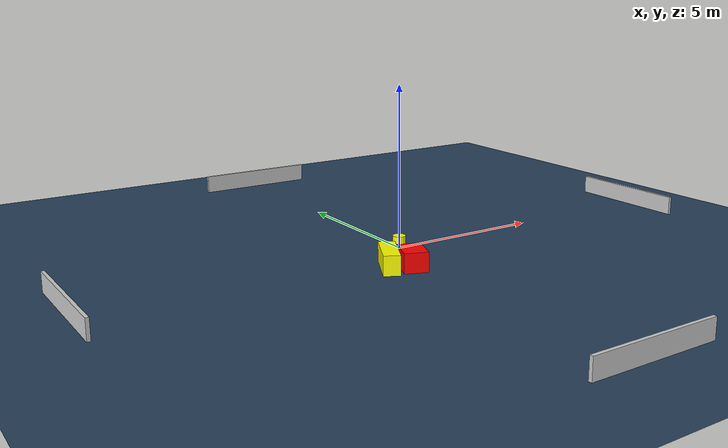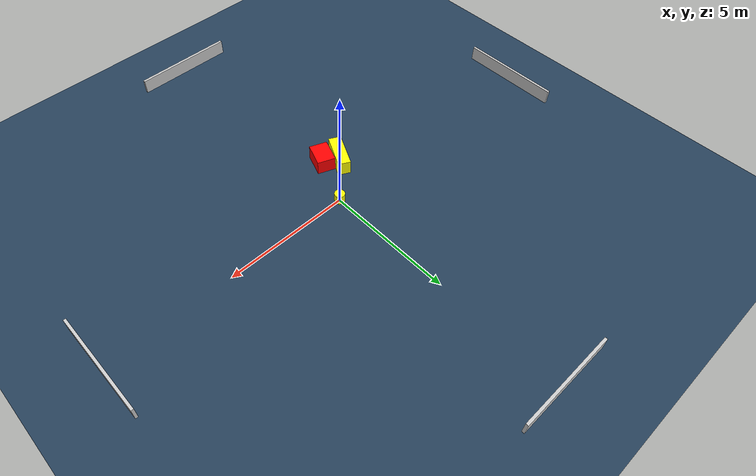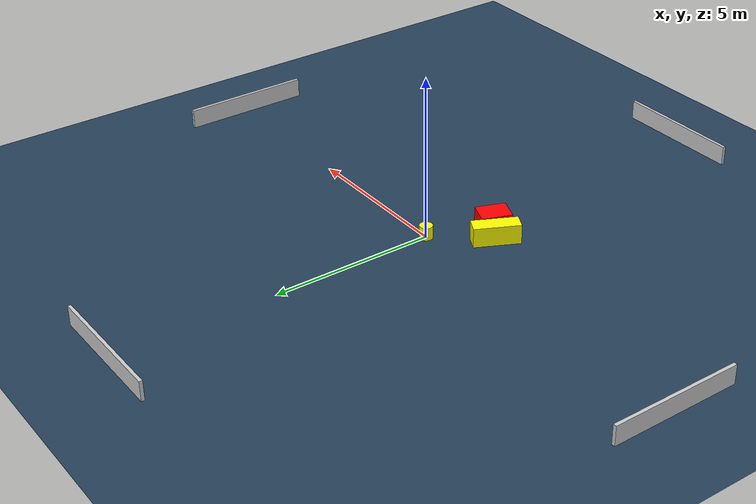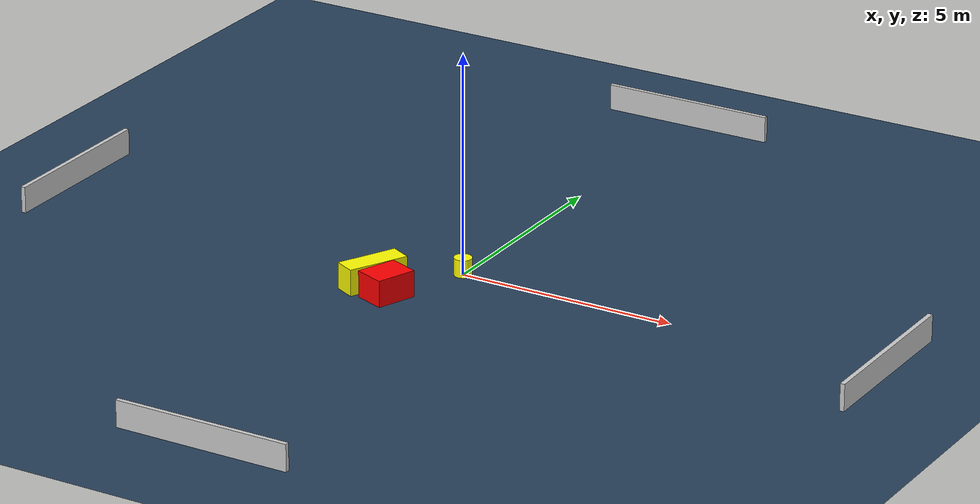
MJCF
<?xml version="1.0" ?>
<mujoco model="generated_environment">
  <option timestep="0.01" integrator="RK4" cone="elliptic"/>
  <default>
    <geom density="1"/>
  </default>
  <asset>
    <texture builtin="gradient" height="3072" name="skybox" rgb1="0.3 0.5 0.7" rgb2="0 0 0" type="skybox" width="512"/>
    <texture builtin="checker" height="300" name="groundplane" rgb1="0.2 0.3 0.4" rgb2="0.1 0.2 0.3" type="2d" width="300"/>
    <material name="groundplane" reflectance="0.2" texrepeat="5 5" texture="groundplane"/>
  </asset>
  <worldbody>
    <light dir="0 0 -1" directional="true" pos="0 0 1.5"/>
    <geom condim="3" friction="0.5 0.005 0.001" material="groundplane" name="floor" pos="0 0 0" size="0 0 0.05" type="plane"/>
    <body name="walls">
      <geom name="wall_1" condim="4" pos="-10.0 0.0 0.3" rgba="0.800000011920929 0.800000011920929 0.800000011920929 1.0" size="0.05 2.0 0.3" type="box"/>
      <geom name="wall_2" condim="4" pos="10.0 0.0 0.3" rgba="0.800000011920929 0.800000011920929 0.800000011920929 1.0" size="0.05 2.0 0.3" type="box"/>
      <geom name="wall_3" condim="4" pos="0.0 -10.0 0.3" rgba="0.800000011920929 0.800000011920929 0.800000011920929 1.0" size="2.0 0.05 0.3" type="box"/>
      <geom name="wall_4" condim="4" pos="0.0 10.0 0.3" rgba="0.800000011920929 0.800000011920929 0.800000011920929 1.0" size="2.0 0.05 0.3" type="box"/>
    </body>
    <body name="robot">
      <joint name="joint_x" type="slide" pos="0 0 0" axis="1 0 0"/>
      <joint name="joint_y" type="slide" pos="0 0 0" axis="0 1 0"/>
      <geom name="robot" type="cylinder" pos="0.0 0.0 0.2" size="0.2 0.2 0.0" mass="5.0" friction="1.0 0.005 0.0001" condim="4" rgba="1.0 1.0 0.0 1.0"/>
    </body>
    <body name="obstacle_1_movable">
      <geom name="obstacle_1_movable" condim="4" pos="-1.343970786563036 -1.4680470008504478 0.3" euler="0 0 153.16699986801632" friction="0.0 0.005 0.001" rgba="1.0 1.0 0.0 1.0" size="0.24888705853749593 0.6997749147703466 0.3" type="box" mass="0.1"/>
      <joint type="free"/>
    </body>
    <body name="obstacle_2_static">
      <geom name="obstacle_2_static" condim="4" pos="-0.7819686752025569 -1.8327914795302047 0.3" euler="0 0 69.0979783889552" friction="0.0 0.005 0.001" rgba="1.0 0.0 0.0 1.0" size="0.4631552135480342 0.3574633455385986 0.3" type="box"/>
    </body>
  </worldbody>
  <actuator>
    <motor name="actuator_x" joint="joint_x" gear="1" ctrlrange="-1 1"/>
    <motor name="actuator_y" joint="joint_y" gear="1" ctrlrange="-1 1"/>
  </actuator>
</mujoco>
